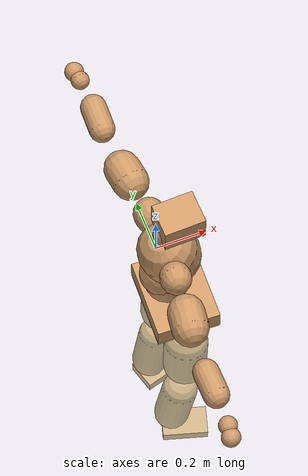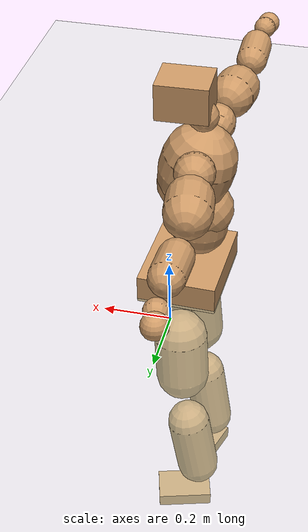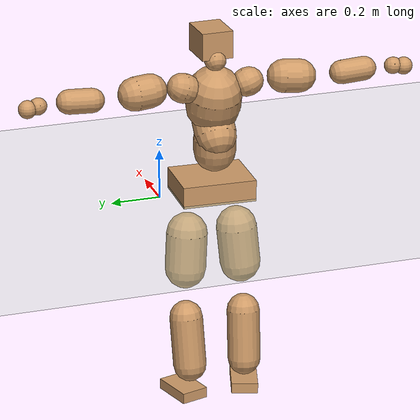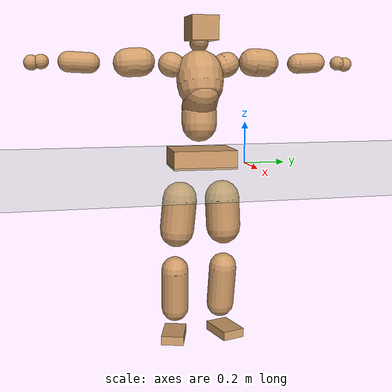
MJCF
<mujoco model="humanoid">
  <compiler coordinate="local" angle="radian"/>
  <default>
    <joint damping="0.0" armature="0.01" stiffness="0.0" limited="true"/>
    <geom conaffinity="1" condim="3" contype="7" margin="0.001" rgba="0.8 0.6 .4 1"/>
  </default>
  <asset>
    <texture type="skybox" builtin="gradient" rgb1=".4 .5 .6" rgb2="0 0 0" width="100" height="100"/>
    <texture builtin="flat" height="1278" mark="cross" markrgb="1 1 1" name="texgeom" random="0.01" rgb1="0.8 0.6 0.4" rgb2="0.8 0.6 0.4" type="cube" width="127"/>
    <texture builtin="checker" height="100" name="texplane" rgb1="0 0 0" rgb2="0.8 0.8 0.8" type="2d" width="100"/>
    <material name="MatPlane" reflectance="0.5" shininess="1" specular="1" texrepeat="60 60" texture="texplane"/>
    <material name="geom" texture="texgeom" texuniform="true"/>
  </asset>
  <worldbody>
    <light cutoff="100" diffuse="1 1 1" dir="-0 0 -1.3" directional="true" exponent="1" pos="0 0 1.3" specular=".1 .1 .1"/>
    <geom conaffinity="1" condim="3" name="floor" pos="0 0 0" rgba="0.8 0.9 0.8 1" size="100 100 .2" type="plane" material="MatPlane"/>
    <body name="Pelvis" pos="0.0007 -0.2149 0.0462">
      <freejoint name="Pelvis"/>
      <geom type="box" contype="1" conaffinity="1" density="5359.375572" pos="-0.0059 0.0002 -0.0138" size="0.119 0.149 0.0437" quat="0.9999 0.0000 0.0000 -0.0165" name="Pelvis"/>
      <body name="L_Hip" pos="0 0.0976 -0.0981">
        <joint name="L_Hip_x" type="hinge" pos="0 0 0" axis="1 0 0" stiffness="1600" damping="160" armature="0.02" range="-180.0000 180.0000"/>
        <joint name="L_Hip_y" type="hinge" pos="0 0 0" axis="0 1 0" stiffness="1600" damping="160" armature="0.02" range="-180.0000 180.0000"/>
        <joint name="L_Hip_z" type="hinge" pos="0 0 0" axis="0 0 1" stiffness="1600" damping="160" armature="0.02" range="-180.0000 180.0000"/>
        <geom type="capsule" contype="1" conaffinity="1" density="2040.816327" size="0.0826" fromto="-0.0056 0.0071 -0.1122 -0.0130 0.0165 -0.2605" name="L_Hip"/>
        <body name="L_Knee" pos="-0.0186 0.0236 -0.3727">
          <joint name="L_Knee_x" type="hinge" pos="0 0 0" axis="1 0 0" stiffness="1600" damping="160" armature="0.02" range="-180.0000 180.0000"/>
          <joint name="L_Knee_y" type="hinge" pos="0 0 0" axis="0 1 0" stiffness="1600" damping="160" armature="0.02" range="-180.0000 180.0000"/>
          <joint name="L_Knee_z" type="hinge" pos="0 0 0" axis="0 0 1" stiffness="1600" damping="160" armature="0.02" range="-180.0000 180.0000"/>
          <geom type="capsule" contype="1" conaffinity="1" density="1234.567901" size="0.067" fromto="-0.0145 -0.0024 -0.0959 -0.0450 -0.0076 -0.2971" name="L_Knee"/>
          <body name="L_Ankle" pos="-0.0595 -0.01 -0.3929">
            <joint name="L_Ankle_x" type="hinge" pos="0 0 0" axis="1 0 0" stiffness="1600" damping="160" armature="0.02" range="-180.0000 180.0000"/>
            <joint name="L_Ankle_y" type="hinge" pos="0 0 0" axis="0 1 0" stiffness="1600" damping="160" armature="0.02" range="-180.0000 180.0000"/>
            <joint name="L_Ankle_z" type="hinge" pos="0 0 0" axis="0 0 1" stiffness="1600" damping="160" armature="0.02" range="-180.0000 180.0000"/>
            <geom type="box" contype="1" conaffinity="1" density="999.999981" pos="0.0585 0.0166 -0.0284" size="0.0863 0.0563 0.0217" quat="0.9905 0.0000 0.0000 0.1376" name="L_Ankle"/>
            <body name="L_Toe" pos="0.1171 0.0332 -0.0567">
              <joint name="L_Toe_x" type="hinge" pos="0 0 0" axis="1 0 0" stiffness="1000" damping="100" armature="0.02" range="-180.0000 180.0000"/>
              <joint name="L_Toe_y" type="hinge" pos="0 0 0" axis="0 1 0" stiffness="1000" damping="100" armature="0.02" range="-180.0000 180.0000"/>
              <joint name="L_Toe_z" type="hinge" pos="0 0 0" axis="0 0 1" stiffness="1000" damping="100" armature="0.02" range="-180.0000 180.0000"/>
              <geom type="box" contype="1" conaffinity="1" density="7858514.356171" pos="0.0000 0.0000 0.0309" size="0.001 0.0027 0.0012" quat="0.9897 0.0000 0.0000 0.1431" name="L_Toe"/>
            </body>
          </body>
        </body>
      </body>
      <body name="R_Hip" pos="0.0025 -0.0952 -0.098">
        <joint name="R_Hip_x" type="hinge" pos="0 0 0" axis="1 0 0" stiffness="1600" damping="160" armature="0.02" range="-180.0000 180.0000"/>
        <joint name="R_Hip_y" type="hinge" pos="0 0 0" axis="0 1 0" stiffness="1600" damping="160" armature="0.02" range="-180.0000 180.0000"/>
        <joint name="R_Hip_z" type="hinge" pos="0 0 0" axis="0 0 1" stiffness="1600" damping="160" armature="0.02" range="-180.0000 180.0000"/>
        <geom type="capsule" contype="1" conaffinity="1" density="2040.816327" size="0.0818" fromto="-0.0062 -0.0095 -0.1112 -0.0149 -0.0228 -0.2655" name="R_Hip"/>
        <body name="R_Knee" pos="-0.0211 -0.0323 -0.3767">
          <joint name="R_Knee_x" type="hinge" pos="0 0 0" axis="1 0 0" stiffness="1600" damping="160" armature="0.02" range="-180.0000 180.0000"/>
          <joint name="R_Knee_y" type="hinge" pos="0 0 0" axis="0 1 0" stiffness="1600" damping="160" armature="0.02" range="-180.0000 180.0000"/>
          <joint name="R_Knee_z" type="hinge" pos="0 0 0" axis="0 0 1" stiffness="1600" damping="160" armature="0.02" range="-180.0000 180.0000"/>
          <geom type="capsule" contype="1" conaffinity="1" density="1234.567901" size="0.0666" fromto="-0.0142 0.0026 -0.0955 -0.0445 0.0083 -0.2993" name="R_Knee"/>
          <body name="R_Ankle" pos="-0.0587 0.0109 -0.3948">
            <joint name="R_Ankle_x" type="hinge" pos="0 0 0" axis="1 0 0" stiffness="1600" damping="160" armature="0.02" range="-180.0000 180.0000"/>
            <joint name="R_Ankle_y" type="hinge" pos="0 0 0" axis="0 1 0" stiffness="1600" damping="160" armature="0.02" range="-180.0000 180.0000"/>
            <joint name="R_Ankle_z" type="hinge" pos="0 0 0" axis="0 0 1" stiffness="1600" damping="160" armature="0.02" range="-180.0000 180.0000"/>
            <geom type="box" contype="1" conaffinity="1" density="999.999946" pos="0.0611 -0.0180 -0.0259" size="0.0862 0.054 0.0217" quat="0.9897 0.0000 0.0000 -0.1430" name="R_Ankle"/>
            <body name="R_Toe" pos="0.1223 -0.0361 -0.0518">
              <joint name="R_Toe_x" type="hinge" pos="0 0 0" axis="1 0 0" stiffness="1000" damping="100" armature="0.02" range="-180.0000 180.0000"/>
              <joint name="R_Toe_y" type="hinge" pos="0 0 0" axis="0 1 0" stiffness="1000" damping="100" armature="0.02" range="-180.0000 180.0000"/>
              <joint name="R_Toe_z" type="hinge" pos="0 0 0" axis="0 0 1" stiffness="1000" damping="100" armature="0.02" range="-180.0000 180.0000"/>
              <geom type="box" contype="1" conaffinity="1" density="7785339.381603" pos="0.0000 0.0000 0.0278" size="0.0011 0.0025 0.0012" quat="0.9911 0.0000 0.0000 -0.1334" name="R_Toe"/>
            </body>
          </body>
        </body>
      </body>
      <body name="Torso" pos="-0.0378 -0.0012 0.1135">
        <joint name="Torso_x" type="hinge" pos="0 0 0" axis="1 0 0" stiffness="2000" damping="200" armature="0.02" range="-180.0000 180.0000"/>
        <joint name="Torso_y" type="hinge" pos="0 0 0" axis="0 1 0" stiffness="2000" damping="200" armature="0.02" range="-180.0000 180.0000"/>
        <joint name="Torso_z" type="hinge" pos="0 0 0" axis="0 0 1" stiffness="2000" damping="200" armature="0.02" range="-180.0000 180.0000"/>
        <geom type="capsule" contype="1" conaffinity="1" density="2040.816327" size="0.0846" fromto="-0.0073 0.0014 0.0843 -0.0026 0.0005 0.0307" name="Torso"/>
        <body name="Spine" pos="-0.0099 0.0019 0.115">
          <joint name="Spine_x" type="hinge" pos="0 0 0" axis="1 0 0" stiffness="2000" damping="200" armature="0.02" range="-180.0000 180.0000"/>
          <joint name="Spine_y" type="hinge" pos="0 0 0" axis="0 1 0" stiffness="2000" damping="200" armature="0.02" range="-180.0000 180.0000"/>
          <joint name="Spine_z" type="hinge" pos="0 0 0" axis="0 0 1" stiffness="2000" damping="200" armature="0.02" range="-180.0000 180.0000"/>
          <geom type="capsule" contype="1" conaffinity="1" density="2040.816327" size="0.0825" fromto="0.0516 0.0004 0.0644 -0.0129 -0.0001 -0.0161" name="Spine"/>
          <body name="Chest" pos="0.0387 0.0003 0.0483">
            <joint name="Chest_x" type="hinge" pos="0 0 0" axis="1 0 0" stiffness="2000" damping="200" armature="0.02" range="-180.0000 180.0000"/>
            <joint name="Chest_y" type="hinge" pos="0 0 0" axis="0 1 0" stiffness="2000" damping="200" armature="0.02" range="-180.0000 180.0000"/>
            <joint name="Chest_z" type="hinge" pos="0 0 0" axis="0 0 1" stiffness="2000" damping="200" armature="0.02" range="-180.0000 180.0000"/>
            <geom type="capsule" contype="1" conaffinity="1" density="2040.816327" size="0.1102" fromto="-0.0317 -0.0005 0.1056 -0.0161 -0.0003 0.0536" name="Chest"/>
            <body name="Neck" pos="-0.0601 -0.0014 0.2234">
              <joint name="Neck_x" type="hinge" pos="0 0 0" axis="1 0 0" stiffness="1000" damping="100" armature="0.02" range="-180.0000 180.0000"/>
              <joint name="Neck_y" type="hinge" pos="0 0 0" axis="0 1 0" stiffness="1000" damping="100" armature="0.02" range="-180.0000 180.0000"/>
              <joint name="Neck_z" type="hinge" pos="0 0 0" axis="0 0 1" stiffness="1000" damping="100" armature="0.02" range="-180.0000 180.0000"/>
              <geom type="capsule" contype="1" conaffinity="1" density="1000" size="0.044" fromto="0.0277 -0.0004 0.0342 0.0186 -0.0003 0.0230" name="Neck"/>
              <body name="Head" pos="0.0463 -0.0006 0.0571">
                <joint name="Head_x" type="hinge" pos="0 0 0" axis="1 0 0" stiffness="1000" damping="100" armature="0.02" range="-180.0000 180.0000"/>
                <joint name="Head_y" type="hinge" pos="0 0 0" axis="0 1 0" stiffness="1000" damping="100" armature="0.02" range="-180.0000 180.0000"/>
                <joint name="Head_z" type="hinge" pos="0 0 0" axis="0 0 1" stiffness="1000" damping="100" armature="0.02" range="-180.0000 180.0000"/>
                <geom type="box" contype="1" conaffinity="1" density="2250.000065" pos="0.0241 0.0007 0.0296" size="0.0768 0.063 0.0553" quat="0.9999 0.0000 0.0000 0.0141" name="Head"/>
              </body>
            </body>
            <body name="L_Thorax" pos="-0.0385 0.0836 0.1273">
              <joint name="L_Thorax_x" type="hinge" pos="0 0 0" axis="1 0 0" stiffness="1000" damping="100" armature="0.02" range="-180.0000 180.0000"/>
              <joint name="L_Thorax_y" type="hinge" pos="0 0 0" axis="0 1 0" stiffness="1000" damping="100" armature="0.02" range="-180.0000 180.0000"/>
              <joint name="L_Thorax_z" type="hinge" pos="0 0 0" axis="0 0 1" stiffness="1000" damping="100" armature="0.02" range="-180.0000 180.0000"/>
              <geom type="capsule" contype="1" conaffinity="1" density="1000" size="0.0586" fromto="-0.0081 0.0540 0.0211 -0.0058 0.0384 0.0150" name="L_Thorax"/>
              <body name="L_Shoulder" pos="-0.0139 0.0924 0.0362">
                <joint name="L_Shoulder_x" type="hinge" pos="0 0 0" axis="1 0 0" stiffness="1000" damping="100" armature="0.02" range="-720.0000 720.0000"/>
                <joint name="L_Shoulder_y" type="hinge" pos="0 0 0" axis="0 1 0" stiffness="1000" damping="100" armature="0.02" range="-720.0000 720.0000"/>
                <joint name="L_Shoulder_z" type="hinge" pos="0 0 0" axis="0 0 1" stiffness="1000" damping="100" armature="0.02" range="-720.0000 720.0000"/>
                <geom type="capsule" contype="1" conaffinity="1" density="1000" size="0.0672" fromto="-0.0129 0.0962 -0.0049 -0.0213 0.1591 -0.0081" name="L_Shoulder"/>
                <body name="L_Elbow" pos="-0.0341 0.2553 -0.013">
                  <joint name="L_Elbow_x" type="hinge" pos="0 0 0" axis="1 0 0" stiffness="1000" damping="100" armature="0.02" range="-720.0000 720.0000"/>
                  <joint name="L_Elbow_y" type="hinge" pos="0 0 0" axis="0 1 0" stiffness="1000" damping="100" armature="0.02" range="-720.0000 720.0000"/>
                  <joint name="L_Elbow_z" type="hinge" pos="0 0 0" axis="0 0 1" stiffness="1000" damping="100" armature="0.02" range="-720.0000 720.0000"/>
                  <geom type="capsule" contype="1" conaffinity="1" density="1000" size="0.0481" fromto="0.0016 0.0780 0.0034 0.0035 0.1709 0.0075" name="L_Elbow"/>
                  <body name="L_Wrist" pos="0.0051 0.2489 0.011">
                    <joint name="L_Wrist_x" type="hinge" pos="0 0 0" axis="1 0 0" stiffness="600" damping="60" armature="0.02" range="-180.0000 180.0000"/>
                    <joint name="L_Wrist_y" type="hinge" pos="0 0 0" axis="0 1 0" stiffness="600" damping="60" armature="0.02" range="-180.0000 180.0000"/>
                    <joint name="L_Wrist_z" type="hinge" pos="0 0 0" axis="0 0 1" stiffness="600" damping="60" armature="0.02" range="-180.0000 180.0000"/>
                    <geom type="capsule" contype="1" conaffinity="1" density="1000" size="0.0338" fromto="-0.0069 0.0428 -0.0052 -0.0072 0.0448 -0.0055" name="L_Wrist"/>
                    <body name="L_Hand" pos="-0.014 0.0876 -0.0107">
                      <joint name="L_Hand_x" type="hinge" pos="0 0 0" axis="1 0 0" stiffness="600" damping="60" armature="0.02" range="-180.0000 180.0000"/>
                      <joint name="L_Hand_y" type="hinge" pos="0 0 0" axis="0 1 0" stiffness="600" damping="60" armature="0.02" range="-180.0000 180.0000"/>
                      <joint name="L_Hand_z" type="hinge" pos="0 0 0" axis="0 0 1" stiffness="600" damping="60" armature="0.02" range="-180.0000 180.0000"/>
                      <geom type="sphere" contype="1" conaffinity="1" density="1000" size="0.0354" pos="0.0000 0.0000 0.0000" name="L_Hand"/>
                    </body>
                  </body>
                </body>
              </body>
            </body>
            <body name="R_Thorax" pos="-0.0446 -0.0845 0.1269">
              <joint name="R_Thorax_x" type="hinge" pos="0 0 0" axis="1 0 0" stiffness="1000" damping="100" armature="0.02" range="-180.0000 180.0000"/>
              <joint name="R_Thorax_y" type="hinge" pos="0 0 0" axis="0 1 0" stiffness="1000" damping="100" armature="0.02" range="-180.0000 180.0000"/>
              <joint name="R_Thorax_z" type="hinge" pos="0 0 0" axis="0 0 1" stiffness="1000" damping="100" armature="0.02" range="-180.0000 180.0000"/>
              <geom type="capsule" contype="1" conaffinity="1" density="1000" size="0.0571" fromto="-0.0062 -0.0528 0.0206 -0.0049 -0.0420 0.0164" name="R_Thorax"/>
              <body name="R_Shoulder" pos="-0.0111 -0.0949 0.037">
                <joint name="R_Shoulder_x" type="hinge" pos="0 0 0" axis="1 0 0" stiffness="1000" damping="100" armature="0.02" range="-720.0000 720.0000"/>
                <joint name="R_Shoulder_y" type="hinge" pos="0 0 0" axis="0 1 0" stiffness="1000" damping="100" armature="0.02" range="-720.0000 720.0000"/>
                <joint name="R_Shoulder_z" type="hinge" pos="0 0 0" axis="0 0 1" stiffness="1000" damping="100" armature="0.02" range="-720.0000 720.0000"/>
                <geom type="capsule" contype="1" conaffinity="1" density="1000" size="0.0673" fromto="-0.0114 -0.0965 -0.0055 -0.0185 -0.1567 -0.0089" name="R_Shoulder"/>
                <body name="R_Elbow" pos="-0.0299 -0.2532 -0.0144">
                  <joint name="R_Elbow_x" type="hinge" pos="0 0 0" axis="1 0 0" stiffness="1000" damping="100" armature="0.02" range="-720.0000 720.0000"/>
                  <joint name="R_Elbow_y" type="hinge" pos="0 0 0" axis="0 1 0" stiffness="1000" damping="100" armature="0.02" range="-720.0000 720.0000"/>
                  <joint name="R_Elbow_z" type="hinge" pos="0 0 0" axis="0 0 1" stiffness="1000" damping="100" armature="0.02" range="-720.0000 720.0000"/>
                  <geom type="capsule" contype="1" conaffinity="1" density="1000" size="0.0477" fromto="0.0012 -0.0776 0.0038 0.0027 -0.1740 0.0086" name="R_Elbow"/>
                  <body name="R_Wrist" pos="0.0039 -0.2517 0.0125">
                    <joint name="R_Wrist_x" type="hinge" pos="0 0 0" axis="1 0 0" stiffness="600" damping="60" armature="0.02" range="-180.0000 180.0000"/>
                    <joint name="R_Wrist_y" type="hinge" pos="0 0 0" axis="0 1 0" stiffness="600" damping="60" armature="0.02" range="-180.0000 180.0000"/>
                    <joint name="R_Wrist_z" type="hinge" pos="0 0 0" axis="0 0 1" stiffness="600" damping="60" armature="0.02" range="-180.0000 180.0000"/>
                    <geom type="capsule" contype="1" conaffinity="1" density="1000" size="0.0341" fromto="-0.0057 -0.0424 -0.0039 -0.0060 -0.0444 -0.0041" name="R_Wrist"/>
                    <body name="R_Hand" pos="-0.0117 -0.0868 -0.008">
                      <joint name="R_Hand_x" type="hinge" pos="0 0 0" axis="1 0 0" stiffness="600" damping="60" armature="0.02" range="-180.0000 180.0000"/>
                      <joint name="R_Hand_y" type="hinge" pos="0 0 0" axis="0 1 0" stiffness="600" damping="60" armature="0.02" range="-180.0000 180.0000"/>
                      <joint name="R_Hand_z" type="hinge" pos="0 0 0" axis="0 0 1" stiffness="600" damping="60" armature="0.02" range="-180.0000 180.0000"/>
                      <geom type="sphere" contype="1" conaffinity="1" density="1000" size="0.0351" pos="0.0000 0.0000 0.0000" name="R_Hand"/>
                    </body>
                  </body>
                </body>
              </body>
            </body>
          </body>
        </body>
      </body>
    </body>
  </worldbody>
  <actuator>
    <motor name="L_Hip_x" joint="L_Hip_x" gear="500"/>
    <motor name="L_Hip_y" joint="L_Hip_y" gear="500"/>
    <motor name="L_Hip_z" joint="L_Hip_z" gear="500"/>
    <motor name="L_Knee_x" joint="L_Knee_x" gear="500"/>
    <motor name="L_Knee_y" joint="L_Knee_y" gear="500"/>
    <motor name="L_Knee_z" joint="L_Knee_z" gear="500"/>
    <motor name="L_Ankle_x" joint="L_Ankle_x" gear="500"/>
    <motor name="L_Ankle_y" joint="L_Ankle_y" gear="500"/>
    <motor name="L_Ankle_z" joint="L_Ankle_z" gear="500"/>
    <motor name="L_Toe_x" joint="L_Toe_x" gear="500"/>
    <motor name="L_Toe_y" joint="L_Toe_y" gear="500"/>
    <motor name="L_Toe_z" joint="L_Toe_z" gear="500"/>
    <motor name="R_Hip_x" joint="R_Hip_x" gear="500"/>
    <motor name="R_Hip_y" joint="R_Hip_y" gear="500"/>
    <motor name="R_Hip_z" joint="R_Hip_z" gear="500"/>
    <motor name="R_Knee_x" joint="R_Knee_x" gear="500"/>
    <motor name="R_Knee_y" joint="R_Knee_y" gear="500"/>
    <motor name="R_Knee_z" joint="R_Knee_z" gear="500"/>
    <motor name="R_Ankle_x" joint="R_Ankle_x" gear="500"/>
    <motor name="R_Ankle_y" joint="R_Ankle_y" gear="500"/>
    <motor name="R_Ankle_z" joint="R_Ankle_z" gear="500"/>
    <motor name="R_Toe_x" joint="R_Toe_x" gear="500"/>
    <motor name="R_Toe_y" joint="R_Toe_y" gear="500"/>
    <motor name="R_Toe_z" joint="R_Toe_z" gear="500"/>
    <motor name="Torso_x" joint="Torso_x" gear="500"/>
    <motor name="Torso_y" joint="Torso_y" gear="500"/>
    <motor name="Torso_z" joint="Torso_z" gear="500"/>
    <motor name="Spine_x" joint="Spine_x" gear="500"/>
    <motor name="Spine_y" joint="Spine_y" gear="500"/>
    <motor name="Spine_z" joint="Spine_z" gear="500"/>
    <motor name="Chest_x" joint="Chest_x" gear="500"/>
    <motor name="Chest_y" joint="Chest_y" gear="500"/>
    <motor name="Chest_z" joint="Chest_z" gear="500"/>
    <motor name="Neck_x" joint="Neck_x" gear="500"/>
    <motor name="Neck_y" joint="Neck_y" gear="500"/>
    <motor name="Neck_z" joint="Neck_z" gear="500"/>
    <motor name="Head_x" joint="Head_x" gear="500"/>
    <motor name="Head_y" joint="Head_y" gear="500"/>
    <motor name="Head_z" joint="Head_z" gear="500"/>
    <motor name="L_Thorax_x" joint="L_Thorax_x" gear="500"/>
    <motor name="L_Thorax_y" joint="L_Thorax_y" gear="500"/>
    <motor name="L_Thorax_z" joint="L_Thorax_z" gear="500"/>
    <motor name="L_Shoulder_x" joint="L_Shoulder_x" gear="500"/>
    <motor name="L_Shoulder_y" joint="L_Shoulder_y" gear="500"/>
    <motor name="L_Shoulder_z" joint="L_Shoulder_z" gear="500"/>
    <motor name="L_Elbow_x" joint="L_Elbow_x" gear="500"/>
    <motor name="L_Elbow_y" joint="L_Elbow_y" gear="500"/>
    <motor name="L_Elbow_z" joint="L_Elbow_z" gear="500"/>
    <motor name="L_Wrist_x" joint="L_Wrist_x" gear="500"/>
    <motor name="L_Wrist_y" joint="L_Wrist_y" gear="500"/>
    <motor name="L_Wrist_z" joint="L_Wrist_z" gear="500"/>
    <motor name="L_Hand_x" joint="L_Hand_x" gear="500"/>
    <motor name="L_Hand_y" joint="L_Hand_y" gear="500"/>
    <motor name="L_Hand_z" joint="L_Hand_z" gear="500"/>
    <motor name="R_Thorax_x" joint="R_Thorax_x" gear="500"/>
    <motor name="R_Thorax_y" joint="R_Thorax_y" gear="500"/>
    <motor name="R_Thorax_z" joint="R_Thorax_z" gear="500"/>
    <motor name="R_Shoulder_x" joint="R_Shoulder_x" gear="500"/>
    <motor name="R_Shoulder_y" joint="R_Shoulder_y" gear="500"/>
    <motor name="R_Shoulder_z" joint="R_Shoulder_z" gear="500"/>
    <motor name="R_Elbow_x" joint="R_Elbow_x" gear="500"/>
    <motor name="R_Elbow_y" joint="R_Elbow_y" gear="500"/>
    <motor name="R_Elbow_z" joint="R_Elbow_z" gear="500"/>
    <motor name="R_Wrist_x" joint="R_Wrist_x" gear="500"/>
    <motor name="R_Wrist_y" joint="R_Wrist_y" gear="500"/>
    <motor name="R_Wrist_z" joint="R_Wrist_z" gear="500"/>
    <motor name="R_Hand_x" joint="R_Hand_x" gear="500"/>
    <motor name="R_Hand_y" joint="R_Hand_y" gear="500"/>
    <motor name="R_Hand_z" joint="R_Hand_z" gear="500"/>
  </actuator>
  <contact>
    <exclude body1="Torso" body2="Chest"/>
    <exclude body1="Head" body2="Chest"/>
    <exclude body1="R_Knee" body2="R_Toe"/>
    <exclude body1="R_Knee" body2="L_Ankle"/>
    <exclude body1="R_Knee" body2="L_Toe"/>
    <exclude body1="L_Knee" body2="L_Toe"/>
    <exclude body1="L_Knee" body2="R_Ankle"/>
    <exclude body1="L_Knee" body2="R_Toe"/>
    <exclude body1="L_Shoulder" body2="Chest"/>
    <exclude body1="R_Shoulder" body2="Chest"/>
  </contact>
  <sensor/>
  <size njmax="700" nconmax="700"/>
</mujoco>
